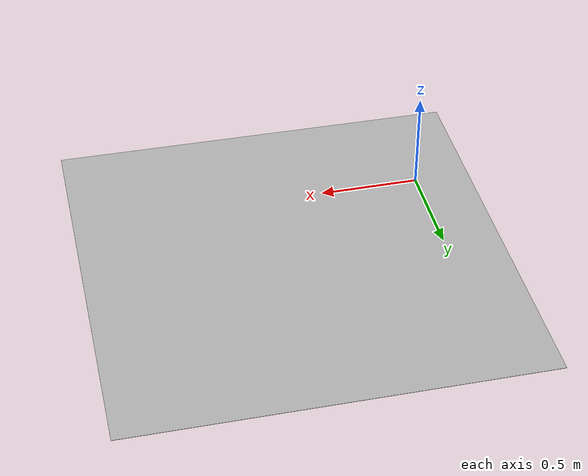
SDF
<?xml version="1.0"?>
<sdf version="1.4">
<model name="gridworld_project_huge">
  <static>true</static>
    <link name="link">
      <pose>0.75 0.457 0 0 0 0</pose>
      <collision name="collision">
        <geometry>
          <plane>
            <normal>0 0 1</normal>
            <size>2.067 2.067</size>
          </plane>
        </geometry>
        <surface>
          <friction>
            <ode>
              <mu>100</mu>
              <mu2>50</mu2>
            </ode>
          </friction>
        </surface>
      </collision>
      <visual name="visual">
        <cast_shadows>false</cast_shadows>
        <geometry>
          <plane>
            <normal>0 0 1</normal>
            <size>2.067 2.067</size>
          </plane>
        </geometry>
        <material>
          <script>
            <uri>model://gridworld_project_huge/materials/gridworld.material</uri>
            <name>GridworldProjectHuge/Image</name>
          </script>
        </material>
      </visual>
    </link>
  </model>
</sdf>
